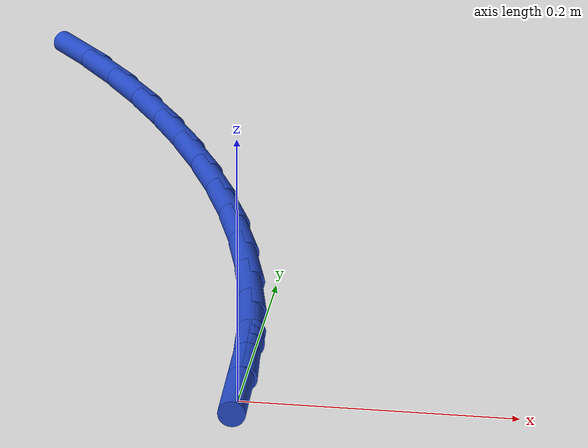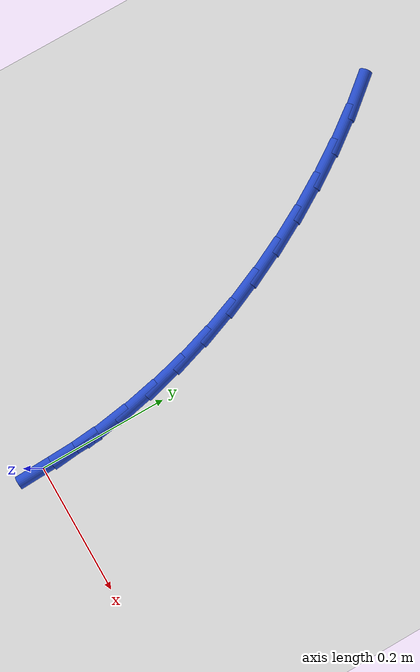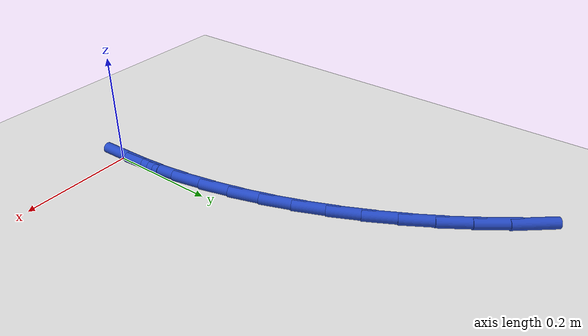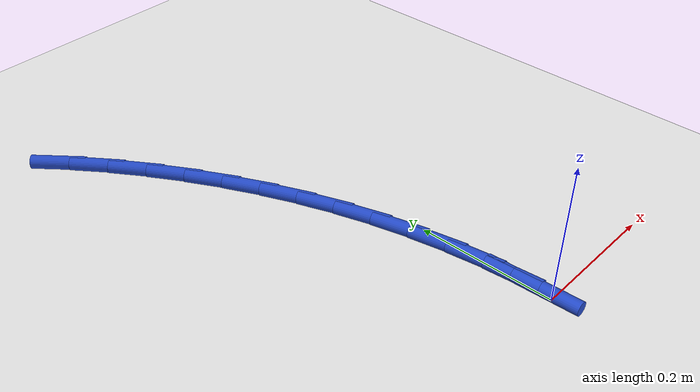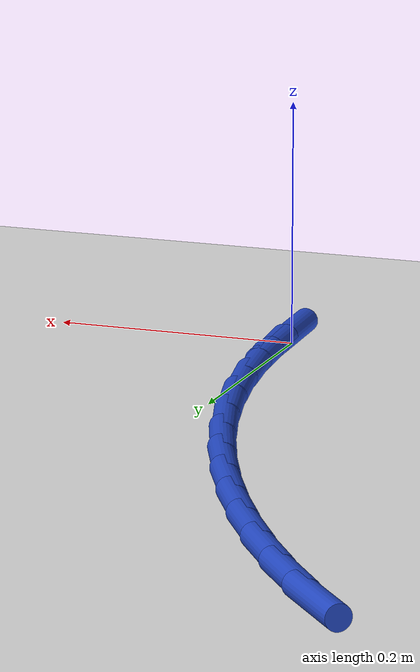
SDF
<sdf version="1.6">
 <world name="default">
  <model name="ground_plane">
   <static>1</static>
   <link name="link">
    <collision name="collision">
     <geometry><plane><normal>0 0 1</normal><size>100 100</size></plane></geometry>
     <surface><friction><ode><mu>100</mu><mu2>50</mu2></ode></friction></surface>
    </collision>
    <visual name="visual">
     <cast_shadows>0</cast_shadows>
     <geometry><plane><normal>0 0 1</normal><size>100 100</size></plane></geometry>
     <material>
      <script><uri>file://media/materials/scripts/gazebo.material</uri><name>Gazebo/WhiteGlow</name></script>
     </material>
    </visual>
   </link>
  </model>
  <model name="line">
   <link name="link_1">
    <pose>-0.0019462055608218444 0.055727319599676445 0.01 0 1.57 -1.4786835904843736</pose>
    <collision name="collision">
     <geometry><cylinder><radius>0.01</radius><length>0.08</length></cylinder></geometry>
    </collision>
    <visual name="visual">
     <material>
      <script><name>Gazebo/Blue</name><uri>file://media/materials/scripts/gazebo.material</uri></script>
     </material>
     <geometry><cylinder><radius>0.01</radius><length>0.08</length></cylinder></geometry>
    </visual>
   </link>
   <link name="link_2">
    <pose>-0.007053313336320118 0.11101452107045628 0.01 0 1.57 -1.422498898912749</pose>
    <collision name="collision">
     <geometry><cylinder><radius>0.01</radius><length>0.08</length></cylinder></geometry>
    </collision>
    <visual name="visual">
     <material>
      <script><name>Gazebo/Blue</name><uri>file://media/materials/scripts/gazebo.material</uri></script>
     </material>
     <geometry><cylinder><radius>0.01</radius><length>0.08</length></cylinder></geometry>
    </visual>
   </link>
   <link name="link_3">
    <pose>-0.01524086450495292 0.16581953384768452 0.01 0 1.57 -1.367537507264512</pose>
    <collision name="collision">
     <geometry><cylinder><radius>0.01</radius><length>0.08</length></cylinder></geometry>
    </collision>
    <visual name="visual">
     <material>
      <script><name>Gazebo/Blue</name><uri>file://media/materials/scripts/gazebo.material</uri></script>
     </material>
     <geometry><cylinder><radius>0.01</radius><length>0.08</length></cylinder></geometry>
    </visual>
   </link>
   <link name="link_4">
    <pose>-0.02642840024517841 0.2201002873667061 0.01 0 1.57 -1.3139656422594608</pose>
    <collision name="collision">
     <geometry><cylinder><radius>0.01</radius><length>0.08</length></cylinder></geometry>
    </collision>
    <visual name="visual">
     <material>
      <script><name>Gazebo/Blue</name><uri>file://media/materials/scripts/gazebo.material</uri></script>
     </material>
     <geometry><cylinder><radius>0.01</radius><length>0.08</length></cylinder></geometry>
    </visual>
   </link>
   <link name="link_5">
    <pose>-0.04053546173545471 0.27381471106286587 0.01 0 1.57 -1.261910057839362</pose>
    <collision name="collision">
     <geometry><cylinder><radius>0.01</radius><length>0.08</length></cylinder></geometry>
    </collision>
    <visual name="visual">
     <material>
      <script><name>Gazebo/Blue</name><uri>file://media/materials/scripts/gazebo.material</uri></script>
     </material>
     <geometry><cylinder><radius>0.01</radius><length>0.08</length></cylinder></geometry>
    </visual>
   </link>
   <link name="link_6">
    <pose>-0.057481590154239995 0.326920734371509 0.01 0 1.57 -1.211459118207353</pose>
    <collision name="collision">
     <geometry><cylinder><radius>0.01</radius><length>0.08</length></cylinder></geometry>
    </collision>
    <visual name="visual">
     <material>
      <script><name>Gazebo/Blue</name><uri>file://media/materials/scripts/gazebo.material</uri></script>
     </material>
     <geometry><cylinder><radius>0.01</radius><length>0.08</length></cylinder></geometry>
    </visual>
   </link>
   <link name="link_7">
    <pose>-0.07718632667999237 0.3793762867279804 0.01 0 1.57 -1.1626654332946338</pose>
    <collision name="collision">
     <geometry><cylinder><radius>0.01</radius><length>0.08</length></cylinder></geometry>
    </collision>
    <visual name="visual">
     <material>
      <script><name>Gazebo/Blue</name><uri>file://media/materials/scripts/gazebo.material</uri></script>
     </material>
     <geometry><cylinder><radius>0.01</radius><length>0.08</length></cylinder></geometry>
    </visual>
   </link>
   <link name="link_8">
    <pose>-0.09956921249116996 0.4311392975676248 0.01 0 1.57 -1.115549561336422</pose>
    <collision name="collision">
     <geometry><cylinder><radius>0.01</radius><length>0.08</length></cylinder></geometry>
    </collision>
    <visual name="visual">
     <material>
      <script><name>Gazebo/Blue</name><uri>file://media/materials/scripts/gazebo.material</uri></script>
     </material>
     <geometry><cylinder><radius>0.01</radius><length>0.08</length></cylinder></geometry>
    </visual>
   </link>
   <link name="link_9">
    <pose>-0.12454978876623092 0.48216769632578754 0.01 0 1.57 -1.069995541180851</pose>
    <collision name="collision">
     <geometry><cylinder><radius>0.01</radius><length>0.08</length></cylinder></geometry>
    </collision>
    <visual name="visual">
     <material>
      <script><name>Gazebo/Blue</name><uri>file://media/materials/scripts/gazebo.material</uri></script>
     </material>
     <geometry><cylinder><radius>0.01</radius><length>0.08</length></cylinder></geometry>
    </visual>
   </link>
   <link name="link_10">
    <pose>-0.152047502203618 0.5324062622459313 0.01 0 1.57 -1.024488737165141</pose>
    <collision name="collision">
     <geometry><cylinder><radius>0.01</radius><length>0.08</length></cylinder></geometry>
    </collision>
    <visual name="visual">
     <material>
      <script><name>Gazebo/Blue</name><uri>file://media/materials/scripts/gazebo.material</uri></script>
     </material>
     <geometry><cylinder><radius>0.01</radius><length>0.08</length></cylinder></geometry>
    </visual>
   </link>
   <link name="link_11">
    <pose>-0.18198061869245277 0.5816354237393851 0.01 0 1.57 -0.9776021951369301</pose>
    <collision name="collision">
     <geometry><cylinder><radius>0.01</radius><length>0.08</length></cylinder></geometry>
    </collision>
    <visual name="visual">
     <material>
      <script><name>Gazebo/Blue</name><uri>file://media/materials/scripts/gazebo.material</uri></script>
     </material>
     <geometry><cylinder><radius>0.01</radius><length>0.08</length></cylinder></geometry>
    </visual>
   </link>
   <link name="link_12">
    <pose>-0.21426660122334965 0.6295238578657438 0.01 0 1.57 -0.9287424187389016</pose>
    <collision name="collision">
     <geometry><cylinder><radius>0.01</radius><length>0.08</length></cylinder></geometry>
    </collision>
    <visual name="visual">
     <material>
      <script><name>Gazebo/Blue</name><uri>file://media/materials/scripts/gazebo.material</uri></script>
     </material>
     <geometry><cylinder><radius>0.01</radius><length>0.08</length></cylinder></geometry>
    </visual>
   </link>
   <link name="link_13">
    <pose>-0.24882289743211927 0.6757381045277473 0.01 0 1.57 -0.8773246449770186</pose>
    <collision name="collision">
     <geometry><cylinder><radius>0.01</radius><length>0.08</length></cylinder></geometry>
    </collision>
    <visual name="visual">
     <material>
      <script><name>Gazebo/Blue</name><uri>file://media/materials/scripts/gazebo.material</uri></script>
     </material>
     <geometry><cylinder><radius>0.01</radius><length>0.08</length></cylinder></geometry>
    </visual>
   </link>
   <link name="link_120">
    <pose>4.163336342344337e-17 1.1102230246251565e-16 0.01 0 1.57 -1.5355180773077677</pose>
    <collision name="collision">
     <geometry><cylinder><radius>0.01</radius><length>0.08</length></cylinder></geometry>
    </collision>
    <visual name="visual">
     <material>
      <script><name>Gazebo/Blue</name><uri>file://media/materials/scripts/gazebo.material</uri></script>
     </material>
     <geometry><cylinder><radius>0.01</radius><length>0.08</length></cylinder></geometry>
    </visual>
   </link>
   <link name="link_121">
    <pose>-0.0019652762765388354 0.055684761556475976 0.01 0 1.57 -1.5355180773077681</pose>
    <collision name="collision">
     <geometry><cylinder><radius>0.01</radius><length>0.08</length></cylinder></geometry>
    </collision>
    <visual name="visual">
     <material>
      <script><name>Gazebo/Blue</name><uri>file://media/materials/scripts/gazebo.material</uri></script>
     </material>
     <geometry><cylinder><radius>0.01</radius><length>0.08</length></cylinder></geometry>
    </visual>
   </link>
  </model>
 </world>
</sdf>
